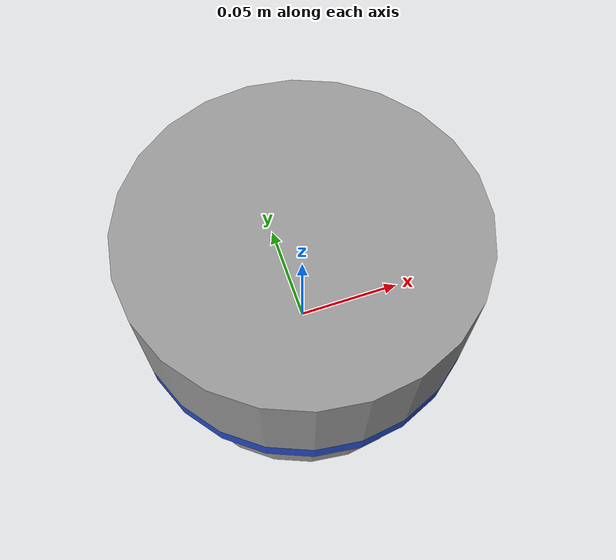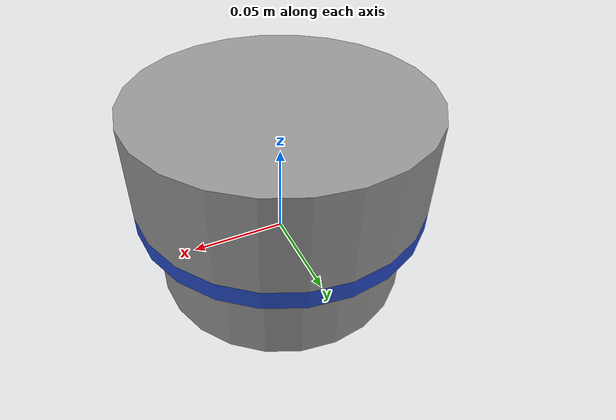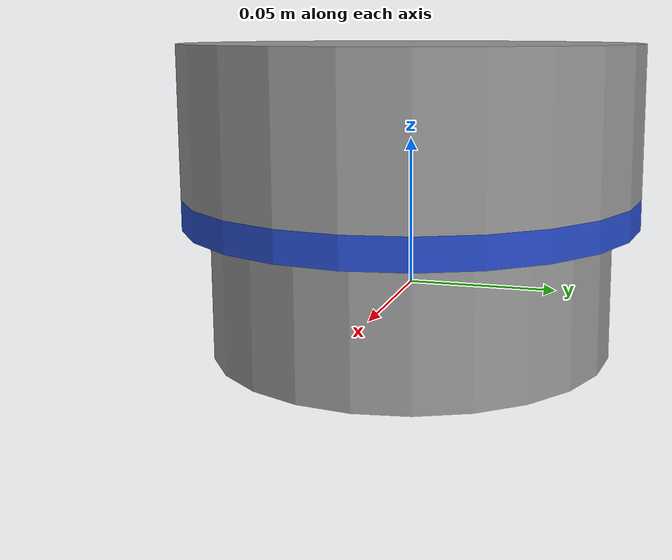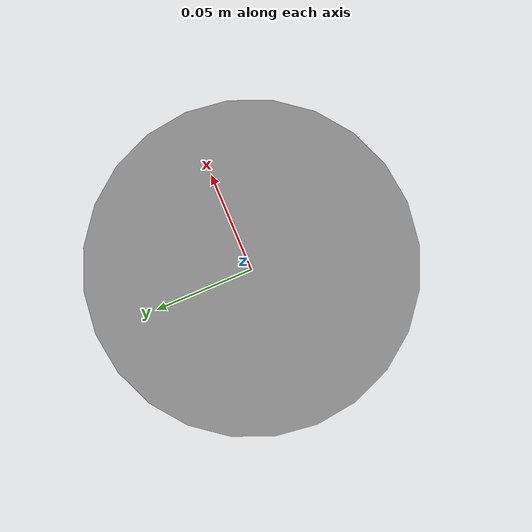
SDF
<?xml version='1.0'?>
<sdf version='1.7'>

  <model name='ping360'>

        <link name='base_link'>

        <inertial>
            <mass>0.100</mass>
            <inertia>
            <ixx>0.0023333</ixx>
            <ixy>0</ixy>
            <ixz>0</ixz>
            <iyy>0.0023333</iyy>
            <iyz>0</iyz>
            <izz>0.0029794</izz>
            </inertia>
            <pose>0 0 0 0 -0 0</pose>
        </inertial>

        <pose>0 0 0 0 -0 0</pose>
        <gravity>1</gravity>
        <self_collide>0</self_collide>
        <kinematic>0</kinematic>
        <enable_wind>0</enable_wind>

        <visual name='visual'>
            <pose>0 0 0 0 -0 0</pose>
            <geometry>
            <cylinder>
                <radius>0.068</radius>
                <length>0.044</length>
            </cylinder>
            </geometry>
            <material>
            <lighting>1</lighting>
            <script>
                <uri>file://media/materials/scripts/gazebo.material</uri>
                <name>Gazebo/Grey</name>
            </script>
            <shader type='pixel'>
                <normal_map>__default__</normal_map>
            </shader>
            <emissive>0 0 0 1</emissive>
            <ambient>0.3 0.3 0.3 1</ambient>
            <diffuse>0.7 0.7 0.7 1</diffuse>
            <specular>0.01 0.01 0.01 1</specular>
            </material>
            <transparency>0</transparency>
            <cast_shadows>1</cast_shadows>
        </visual>

        <collision name='collision'>
            <laser_retro>0</laser_retro>
            <max_contacts>10</max_contacts>
            <pose>0 0 0 0 -0 0</pose>
            <geometry>
            <cylinder>
                <radius>0.068</radius>
                <length>0.044</length>
            </cylinder>
            </geometry>
            <surface>
            <friction>
                <ode>
                <mu>1</mu>
                <mu2>1</mu2>
                <fdir1>0 0 0</fdir1>
                <slip1>0</slip1>
                <slip2>0</slip2>
                </ode>
                <torsional>
                <coefficient>1</coefficient>
                <patch_radius>0</patch_radius>
                <surface_radius>0</surface_radius>
                <use_patch_radius>1</use_patch_radius>
                <ode>
                    <slip>0</slip>
                </ode>
                </torsional>
            </friction>
            <bounce>
                <restitution_coefficient>0</restitution_coefficient>
                <threshold>1e+06</threshold>
            </bounce>
            <contact>
                <collide_without_contact>0</collide_without_contact>
                <collide_without_contact_bitmask>1</collide_without_contact_bitmask>
                <collide_bitmask>1</collide_bitmask>
                <ode>
                <soft_cfm>0</soft_cfm>
                <soft_erp>0.2</soft_erp>
                <kp>1e+13</kp>
                <kd>1</kd>
                <max_vel>0.01</max_vel>
                <min_depth>0</min_depth>
                </ode>
                <bullet>
                <split_impulse>1</split_impulse>
                <split_impulse_penetration_threshold>-0.01</split_impulse_penetration_threshold>
                <soft_cfm>0</soft_cfm>
                <soft_erp>0.2</soft_erp>
                <kp>1e+13</kp>
                <kd>1</kd>
                </bullet>
            </contact>
            </surface>
        </collision>

        </link>

        <link name='blue_ring_link'>

        <inertial>
            <mass>0.004</mass>
            <inertia>
            <ixx>0.0.0001875</ixx>
            <ixy>0</ixy>
            <ixz>0</ixz>
            <iyy>0.0001875</iyy>
            <iyz>0</iyz>
            <izz>0.0003147</izz>
            </inertia>
            <pose>0 0 0 0 -0 0</pose>
        </inertial>

        <pose>0 0 0.027 0 -0 0</pose>
        <gravity>1</gravity>
        <self_collide>0</self_collide>
        <kinematic>0</kinematic>
        <enable_wind>0</enable_wind>

        <visual name='visual'>
            <pose>0 0 0 0 -0 0</pose>
            <geometry>
            <cylinder>
                <radius>0.077</radius>
                <length>0.010</length>
            </cylinder>
            </geometry>
            <material>
            <lighting>1</lighting>
            <script>
                <uri>file://media/materials/scripts/gazebo.material</uri>
                <name>Gazebo/Blue</name>
            </script>
            <shader type='pixel'>
                <normal_map>__default__</normal_map>
            </shader>
            <emissive>0 0 0 1</emissive>
            <ambient>0.447 0.624 0.812 1</ambient>
            <diffuse>0.447 0.624 0.812 1</diffuse>
            <specular>0.447 0.624 0.812 1</specular>
            </material>
            <transparency>0</transparency>
            <cast_shadows>1</cast_shadows>
        </visual>

        <collision name='collision'>
            <laser_retro>0</laser_retro>
            <max_contacts>10</max_contacts>
            <pose>0 0 0 0 -0 0</pose>
            <geometry>
            <cylinder>
                <radius>0.077</radius>
                <length>0.01</length>
            </cylinder>
            </geometry>
            <surface>
            <friction>
                <ode>
                <mu>1</mu>
                <mu2>1</mu2>
                <fdir1>0 0 0</fdir1>
                <slip1>0</slip1>
                <slip2>0</slip2>
                </ode>
                <torsional>
                <coefficient>1</coefficient>
                <patch_radius>0</patch_radius>
                <surface_radius>0</surface_radius>
                <use_patch_radius>1</use_patch_radius>
                <ode>
                    <slip>0</slip>
                </ode>
                </torsional>
            </friction>
            <bounce>
                <restitution_coefficient>0</restitution_coefficient>
                <threshold>1e+06</threshold>
            </bounce>
            <contact>
                <collide_without_contact>0</collide_without_contact>
                <collide_without_contact_bitmask>1</collide_without_contact_bitmask>
                <collide_bitmask>1</collide_bitmask>
                <ode>
                <soft_cfm>0</soft_cfm>
                <soft_erp>0.2</soft_erp>
                <kp>1e+13</kp>
                <kd>1</kd>
                <max_vel>0.01</max_vel>
                <min_depth>0</min_depth>
                </ode>
                <bullet>
                <split_impulse>1</split_impulse>
                <split_impulse_penetration_threshold>-0.01</split_impulse_penetration_threshold>
                <soft_cfm>0</soft_cfm>
                <soft_erp>0.2</soft_erp>
                <kp>1e+13</kp>
                <kd>1</kd>
                </bullet>
            </contact>
            </surface>
        </collision>

        </link>

        <link name='inner_disk'>

        <inertial>
            <mass>0.001</mass>
            <inertia>
            <ixx>0.000046875</ixx>
            <ixy>0</ixy>
            <ixz>0</ixz>
            <iyy>0.000046875</iyy>
            <iyz>0</iyz>
            <izz>0.003728475</izz>
            </inertia>
            <pose>0 0 0 0 -0 0</pose>
        </inertial>

        <pose>0 0 0.027 0 -0 0</pose>
        <gravity>1</gravity>
        <self_collide>0</self_collide>
        <kinematic>0</kinematic>
        <enable_wind>0</enable_wind>

        <visual name='visual'>
            <pose>0 0 0 0 -0 0</pose>
            <geometry>
            <cylinder>
                <radius>0.030</radius>
                <length>0.010</length>
            </cylinder>
            </geometry>
            <material>
            <lighting>1</lighting>
            <script>
                <uri>file://media/materials/scripts/gazebo.material</uri>
                <name>Gazebo/Blue</name>
            </script>
            <shader type='pixel'>
                <normal_map>__default__</normal_map>
            </shader>
            <emissive>0 0 0 1</emissive>
            <ambient>0.447 0.624 0.812 1</ambient>
            <diffuse>0.447 0.624 0.812 1</diffuse>
            <specular>0.447 0.624 0.812 1</specular>
            </material>
            <transparency>0</transparency>
            <cast_shadows>1</cast_shadows>
        </visual>

        <sensor type="ray" name="sonar_sensor">
            <pose>0.077 0 0.0 1.5707 0 0</pose>
            <visualize>true</visualize>
            <update_rate>40</update_rate>
            <ray>
                <scan>
                    <horizontal>
                        <samples>1</samples>
                        <resolution>1</resolution>
                        <min_angle>-0.2181597</min_angle>
                        <max_angle>0.2181597</max_angle>
                    </horizontal>
                    <vertical>
                        <samples>200</samples>
                        <resolution>1</resolution>
                        <min_angle>-0.015</min_angle>
                        <max_angle>0.015</max_angle>
                    </vertical>
                </scan>
                <range>
                    <min>0.75</min>
                    <max>20</max>
                    <resolution>0.01</resolution>
                </range>
                <noise>
                    <type>gaussian</type>
                    <mean>0.0</mean>
                    <stddev>0.02</stddev>
                </noise>
            </ray>
        </sensor>

        </link>

        <link name='top_link'>

        <inertial>
            <mass>0.070</mass>
            <inertia>
            <ixx>0.01020831</ixx>
            <ixy>0</ixy>
            <ixz>0</ixz>
            <iyy>0.01020831</iyy>
            <iyz>0</iyz>
            <izz>0.00875</izz>
            </inertia>
            <pose>0 0 0 0 -0 0</pose>
        </inertial>

        <pose>0 0 0.057 0 -0 0</pose>
        <gravity>1</gravity>
        <self_collide>0</self_collide>
        <kinematic>0</kinematic>
        <enable_wind>0</enable_wind>

        <visual name='visual'>
            <pose>0 0 0 0 -0 0</pose>
            <geometry>
            <cylinder>
                <radius>0.077</radius>
                <length>0.050</length>
            </cylinder>
            </geometry>
            <material>
            <lighting>1</lighting>
            <script>
                <uri>file://media/materials/scripts/gazebo.material</uri>
                <name>Gazebo/Grey</name>
            </script>
            <shader type='pixel'>
                <normal_map>__default__</normal_map>
            </shader>
            <ambient>0.3 0.3 0.3 1</ambient>
            <diffuse>0.7 0.7 0.7 1</diffuse>
            <specular>0.01 0.01 0.01 1</specular>
            <emissive>0 0 0 1</emissive>
            </material>
            <transparency>0</transparency>
            <cast_shadows>1</cast_shadows>
        </visual>

        <collision name='collision'>
            <laser_retro>0</laser_retro>
            <max_contacts>10</max_contacts>
            <pose>0 0 0 0 -0 0</pose>
            <geometry>
            <cylinder>
                <radius>0.077</radius>
                <length>0.05</length>
            </cylinder>
            </geometry>
            <surface>
            <friction>
                <ode>
                <mu>1</mu>
                <mu2>1</mu2>
                <fdir1>0 0 0</fdir1>
                <slip1>0</slip1>
                <slip2>0</slip2>
                </ode>
                <torsional>
                <coefficient>1</coefficient>
                <patch_radius>0</patch_radius>
                <surface_radius>0</surface_radius>
                <use_patch_radius>1</use_patch_radius>
                <ode>
                    <slip>0</slip>
                </ode>
                </torsional>
            </friction>
            <bounce>
                <restitution_coefficient>0</restitution_coefficient>
                <threshold>1e+06</threshold>
            </bounce>
            <contact>
                <collide_without_contact>0</collide_without_contact>
                <collide_without_contact_bitmask>1</collide_without_contact_bitmask>
                <collide_bitmask>1</collide_bitmask>
                <ode>
                <soft_cfm>0</soft_cfm>
                <soft_erp>0.2</soft_erp>
                <kp>1e+13</kp>
                <kd>1</kd>
                <max_vel>0.01</max_vel>
                <min_depth>0</min_depth>
                </ode>
                <bullet>
                <split_impulse>1</split_impulse>
                <split_impulse_penetration_threshold>-0.01</split_impulse_penetration_threshold>
                <soft_cfm>0</soft_cfm>
                <soft_erp>0.2</soft_erp>
                <kp>1e+13</kp>
                <kd>1</kd>
                </bullet>
            </contact>
            </surface>
        </collision>

        </link>

        <joint name='base_bluering_joint' type='fixed'>
        <parent>base_link</parent>
        <child>blue_ring_link</child>
        <pose>0 0 0 0 -0 0</pose>
        <physics>
            <ode>
            <limit>
                <cfm>0</cfm>
                <erp>0.2</erp>
            </limit>
            <suspension>
                <cfm>0</cfm>
                <erp>0.2</erp>
            </suspension>
            </ode>
        </physics>
        </joint>

        <joint name='bluering_top_joint' type='fixed'>
        <parent>blue_ring_link</parent>
        <child>top_link</child>
        <pose>0 0 0 0 -0 0</pose>
        <physics>
            <ode>
            <limit>
                <cfm>0</cfm>
                <erp>0.2</erp>
            </limit>
            <suspension>
                <cfm>0</cfm>
                <erp>0.2</erp>
            </suspension>
            </ode>
        </physics>
        </joint>

        <joint type="revolute" name="inner_disk_joint">
        <pose>0 0 0.027 0 0 0</pose>
        <parent>blue_ring_link</parent>
        <child>inner_disk</child>
        <axis>
            <xyz>0 0 1</xyz>
            <limit>
            <lower>-10000000000000000</lower>
            <upper>10000000000000000</upper>
            </limit>
        </axis>
        </joint>

        <static>0</static>
        <allow_auto_disable>1</allow_auto_disable>

        <plugin name="ping_plugin" filename="libping_plugin.so">
            <velocity>1.5</velocity>
        </plugin>

    </model>

</sdf>
